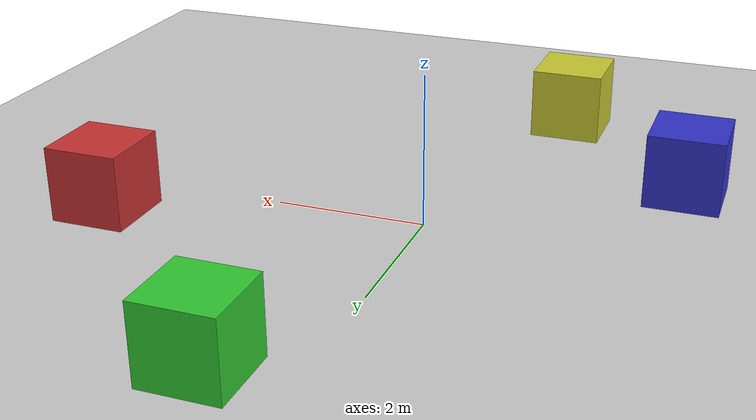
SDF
<?xml version="1.0" ?>
<sdf version="1.8">
  <world name="default">

    <physics name="1ms" type="ignored">
      <max_step_size>0.001</max_step_size>
      <real_time_factor>1.0</real_time_factor>
    </physics>

    <plugin filename="gz-sim-physics-system" name="gz::sim::systems::Physics"/>
    <plugin filename="gz-sim-user-commands-system" name="gz::sim::systems::UserCommands"/>
    <plugin filename="gz-sim-scene-broadcaster-system" name="gz::sim::systems::SceneBroadcaster"/>
    <!-- Sensors system requires GPU rendering; disabled for WSL2 compatibility -->

    <light type="directional" name="sun">
      <cast_shadows>true</cast_shadows>
      <pose>0 0 10 0 0 0</pose>
      <diffuse>0.8 0.8 0.8 1</diffuse>
      <specular>0.2 0.2 0.2 1</specular>
      <direction>-0.5 0.1 -0.9</direction>
    </light>

    <!-- Ground plane -->
    <model name="ground_plane">
      <static>true</static>
      <link name="link">
        <collision name="collision">
          <geometry>
            <plane>
              <normal>0 0 1</normal>
              <size>100 100</size>
            </plane>
          </geometry>
        </collision>
        <visual name="visual">
          <geometry>
            <plane>
              <normal>0 0 1</normal>
              <size>100 100</size>
            </plane>
          </geometry>
          <material>
            <ambient>0.8 0.8 0.8 1</ambient>
            <diffuse>0.8 0.8 0.8 1</diffuse>
          </material>
        </visual>
      </link>
    </model>

    <!-- Obstacle: red box front-right -->
    <model name="box_1">
      <static>true</static>
      <pose>4 1 0.5 0 0 0</pose>
      <link name="link">
        <collision name="collision">
          <geometry><box><size>1 1 1</size></box></geometry>
        </collision>
        <visual name="visual">
          <geometry><box><size>1 1 1</size></box></geometry>
          <material><ambient>0.8 0.2 0.2 1</ambient><diffuse>0.8 0.2 0.2 1</diffuse></material>
        </visual>
      </link>
    </model>

    <!-- Obstacle: green box left -->
    <model name="box_2">
      <static>true</static>
      <pose>1 4 0.5 0 0 0</pose>
      <link name="link">
        <collision name="collision">
          <geometry><box><size>1 1 1</size></box></geometry>
        </collision>
        <visual name="visual">
          <geometry><box><size>1 1 1</size></box></geometry>
          <material><ambient>0.2 0.8 0.2 1</ambient><diffuse>0.2 0.8 0.2 1</diffuse></material>
        </visual>
      </link>
    </model>

    <!-- Obstacle: blue box rear -->
    <model name="box_3">
      <static>true</static>
      <pose>-3 -2 0.5 0 0 0</pose>
      <link name="link">
        <collision name="collision">
          <geometry><box><size>1 1 1</size></box></geometry>
        </collision>
        <visual name="visual">
          <geometry><box><size>1 1 1</size></box></geometry>
          <material><ambient>0.2 0.2 0.8 1</ambient><diffuse>0.2 0.2 0.8 1</diffuse></material>
        </visual>
      </link>
    </model>

    <!-- Obstacle: yellow box right -->
    <model name="box_4">
      <static>true</static>
      <pose>-1 -4 0.5 0 0 0</pose>
      <link name="link">
        <collision name="collision">
          <geometry><box><size>1 1 1</size></box></geometry>
        </collision>
        <visual name="visual">
          <geometry><box><size>1 1 1</size></box></geometry>
          <material><ambient>0.8 0.8 0.2 1</ambient><diffuse>0.8 0.8 0.2 1</diffuse></material>
        </visual>
      </link>
    </model>

  </world>
</sdf>
